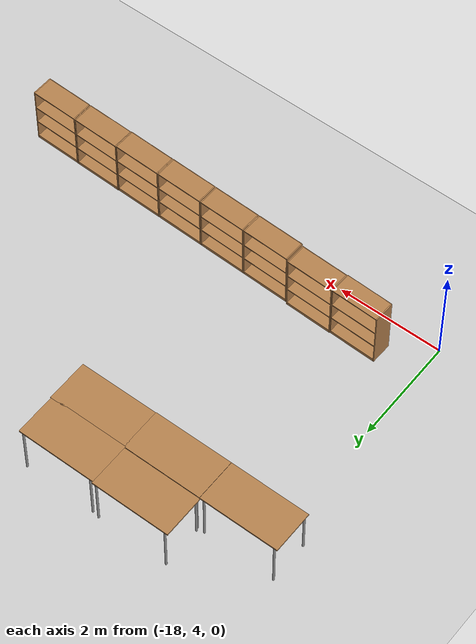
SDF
<sdf version="1.7">
 <world name="default">
  <model name="ground_plane">
   <static>1</static>
   <link name="link">
    <collision name="collision">
     <geometry><plane><normal>0 0 1</normal><size>100 100</size></plane></geometry>
     <surface>
      <contact><collide_bitmask>65535</collide_bitmask></contact>
      <friction><ode><mu>100</mu><mu2>50</mu2></ode></friction>
     </surface>
    </collision>
    <visual name="visual">
     <cast_shadows>0</cast_shadows>
     <geometry><plane><normal>0 0 1</normal><size>100 100</size></plane></geometry>
     <material>
      <script><uri>file://media/materials/scripts/gazebo.material</uri><name>Gazebo/Grey</name></script>
     </material>
    </visual>
   </link>
  </model>
  <model name="table_0_clone">
   <static>1</static>
   <link name="link">
    <collision name="surface">
     <pose>0 0 1 0 -0 0</pose>
     <geometry><box><size>1.5 0.8 0.03</size></box></geometry>
     <surface><friction><ode><mu>0.6</mu><mu2>0.6</mu2></ode></friction></surface>
    </collision>
    <visual name="visual1">
     <pose>0 0 1 0 -0 0</pose>
     <geometry><box><size>1.5 0.8 0.03</size></box></geometry>
     <material>
      <script><uri>file://media/materials/scripts/gazebo.material</uri><name>Gazebo/Wood</name></script>
     </material>
    </visual>
    <collision name="front_left_leg">
     <pose>0.68 0.38 0.5 0 -0 0</pose>
     <geometry><cylinder><radius>0.02</radius><length>1</length></cylinder></geometry>
    </collision>
    <visual name="front_left_leg">
     <pose>0.68 0.38 0.5 0 -0 0</pose>
     <geometry><cylinder><radius>0.02</radius><length>1</length></cylinder></geometry>
     <material>
      <script><uri>file://media/materials/scripts/gazebo.material</uri><name>Gazebo/Grey</name></script>
     </material>
    </visual>
    <collision name="front_right_leg">
     <pose>0.68 -0.38 0.5 0 -0 0</pose>
     <geometry><cylinder><radius>0.02</radius><length>1</length></cylinder></geometry>
    </collision>
    <visual name="front_right_leg">
     <pose>0.68 -0.38 0.5 0 -0 0</pose>
     <geometry><cylinder><radius>0.02</radius><length>1</length></cylinder></geometry>
     <material>
      <script><uri>file://media/materials/scripts/gazebo.material</uri><name>Gazebo/Grey</name></script>
     </material>
    </visual>
    <collision name="back_right_leg">
     <pose>-0.68 -0.38 0.5 0 -0 0</pose>
     <geometry><cylinder><radius>0.02</radius><length>1</length></cylinder></geometry>
    </collision>
    <visual name="back_right_leg">
     <pose>-0.68 -0.38 0.5 0 -0 0</pose>
     <geometry><cylinder><radius>0.02</radius><length>1</length></cylinder></geometry>
     <material>
      <script><uri>file://media/materials/scripts/gazebo.material</uri><name>Gazebo/Grey</name></script>
     </material>
    </visual>
    <collision name="back_left_leg">
     <pose>-0.68 0.38 0.5 0 -0 0</pose>
     <geometry><cylinder><radius>0.02</radius><length>1</length></cylinder></geometry>
    </collision>
    <visual name="back_left_leg">
     <pose>-0.68 0.38 0.5 0 -0 0</pose>
     <geometry><cylinder><radius>0.02</radius><length>1</length></cylinder></geometry>
     <material>
      <script><uri>file://media/materials/scripts/gazebo.material</uri><name>Gazebo/Grey</name></script>
     </material>
    </visual>
   </link>
   <pose>-16.2542 8.67444 0 0 -0 0</pose>
  </model>
  <model name="table_0_clone_0">
   <static>1</static>
   <link name="link">
    <collision name="surface">
     <pose>0 0 1 0 -0 0</pose>
     <geometry><box><size>1.5 0.8 0.03</size></box></geometry>
     <surface><friction><ode><mu>0.6</mu><mu2>0.6</mu2></ode></friction></surface>
    </collision>
    <visual name="visual1">
     <pose>0 0 1 0 -0 0</pose>
     <geometry><box><size>1.5 0.8 0.03</size></box></geometry>
     <material>
      <script><uri>file://media/materials/scripts/gazebo.material</uri><name>Gazebo/Wood</name></script>
     </material>
    </visual>
    <collision name="front_left_leg">
     <pose>0.68 0.38 0.5 0 -0 0</pose>
     <geometry><cylinder><radius>0.02</radius><length>1</length></cylinder></geometry>
    </collision>
    <visual name="front_left_leg">
     <pose>0.68 0.38 0.5 0 -0 0</pose>
     <geometry><cylinder><radius>0.02</radius><length>1</length></cylinder></geometry>
     <material>
      <script><uri>file://media/materials/scripts/gazebo.material</uri><name>Gazebo/Grey</name></script>
     </material>
    </visual>
    <collision name="front_right_leg">
     <pose>0.68 -0.38 0.5 0 -0 0</pose>
     <geometry><cylinder><radius>0.02</radius><length>1</length></cylinder></geometry>
    </collision>
    <visual name="front_right_leg">
     <pose>0.68 -0.38 0.5 0 -0 0</pose>
     <geometry><cylinder><radius>0.02</radius><length>1</length></cylinder></geometry>
     <material>
      <script><uri>file://media/materials/scripts/gazebo.material</uri><name>Gazebo/Grey</name></script>
     </material>
    </visual>
    <collision name="back_right_leg">
     <pose>-0.68 -0.38 0.5 0 -0 0</pose>
     <geometry><cylinder><radius>0.02</radius><length>1</length></cylinder></geometry>
    </collision>
    <visual name="back_right_leg">
     <pose>-0.68 -0.38 0.5 0 -0 0</pose>
     <geometry><cylinder><radius>0.02</radius><length>1</length></cylinder></geometry>
     <material>
      <script><uri>file://media/materials/scripts/gazebo.material</uri><name>Gazebo/Grey</name></script>
     </material>
    </visual>
    <collision name="back_left_leg">
     <pose>-0.68 0.38 0.5 0 -0 0</pose>
     <geometry><cylinder><radius>0.02</radius><length>1</length></cylinder></geometry>
    </collision>
    <visual name="back_left_leg">
     <pose>-0.68 0.38 0.5 0 -0 0</pose>
     <geometry><cylinder><radius>0.02</radius><length>1</length></cylinder></geometry>
     <material>
      <script><uri>file://media/materials/scripts/gazebo.material</uri><name>Gazebo/Grey</name></script>
     </material>
    </visual>
   </link>
   <pose>-17.7586 8.67438 0 0 -0 0</pose>
  </model>
  <model name="table_0_clone_1">
   <static>1</static>
   <link name="link">
    <collision name="surface">
     <pose>0 0 1 0 -0 0</pose>
     <geometry><box><size>1.5 0.8 0.03</size></box></geometry>
     <surface><friction><ode><mu>0.6</mu><mu2>0.6</mu2></ode></friction></surface>
    </collision>
    <visual name="visual1">
     <pose>0 0 1 0 -0 0</pose>
     <geometry><box><size>1.5 0.8 0.03</size></box></geometry>
     <material>
      <script><uri>file://media/materials/scripts/gazebo.material</uri><name>Gazebo/Wood</name></script>
     </material>
    </visual>
    <collision name="front_left_leg">
     <pose>0.68 0.38 0.5 0 -0 0</pose>
     <geometry><cylinder><radius>0.02</radius><length>1</length></cylinder></geometry>
    </collision>
    <visual name="front_left_leg">
     <pose>0.68 0.38 0.5 0 -0 0</pose>
     <geometry><cylinder><radius>0.02</radius><length>1</length></cylinder></geometry>
     <material>
      <script><uri>file://media/materials/scripts/gazebo.material</uri><name>Gazebo/Grey</name></script>
     </material>
    </visual>
    <collision name="front_right_leg">
     <pose>0.68 -0.38 0.5 0 -0 0</pose>
     <geometry><cylinder><radius>0.02</radius><length>1</length></cylinder></geometry>
    </collision>
    <visual name="front_right_leg">
     <pose>0.68 -0.38 0.5 0 -0 0</pose>
     <geometry><cylinder><radius>0.02</radius><length>1</length></cylinder></geometry>
     <material>
      <script><uri>file://media/materials/scripts/gazebo.material</uri><name>Gazebo/Grey</name></script>
     </material>
    </visual>
    <collision name="back_right_leg">
     <pose>-0.68 -0.38 0.5 0 -0 0</pose>
     <geometry><cylinder><radius>0.02</radius><length>1</length></cylinder></geometry>
    </collision>
    <visual name="back_right_leg">
     <pose>-0.68 -0.38 0.5 0 -0 0</pose>
     <geometry><cylinder><radius>0.02</radius><length>1</length></cylinder></geometry>
     <material>
      <script><uri>file://media/materials/scripts/gazebo.material</uri><name>Gazebo/Grey</name></script>
     </material>
    </visual>
    <collision name="back_left_leg">
     <pose>-0.68 0.38 0.5 0 -0 0</pose>
     <geometry><cylinder><radius>0.02</radius><length>1</length></cylinder></geometry>
    </collision>
    <visual name="back_left_leg">
     <pose>-0.68 0.38 0.5 0 -0 0</pose>
     <geometry><cylinder><radius>0.02</radius><length>1</length></cylinder></geometry>
     <material>
      <script><uri>file://media/materials/scripts/gazebo.material</uri><name>Gazebo/Grey</name></script>
     </material>
    </visual>
   </link>
   <pose>-16.277 9.48331 0 0 -0 0</pose>
  </model>
  <model name="table_0_clone_2">
   <static>1</static>
   <link name="link">
    <collision name="surface">
     <pose>0 0 1 0 -0 0</pose>
     <geometry><box><size>1.5 0.8 0.03</size></box></geometry>
     <surface><friction><ode><mu>0.6</mu><mu2>0.6</mu2></ode></friction></surface>
    </collision>
    <visual name="visual1">
     <pose>0 0 1 0 -0 0</pose>
     <geometry><box><size>1.5 0.8 0.03</size></box></geometry>
     <material>
      <script><uri>file://media/materials/scripts/gazebo.material</uri><name>Gazebo/Wood</name></script>
     </material>
    </visual>
    <collision name="front_left_leg">
     <pose>0.68 0.38 0.5 0 -0 0</pose>
     <geometry><cylinder><radius>0.02</radius><length>1</length></cylinder></geometry>
    </collision>
    <visual name="front_left_leg">
     <pose>0.68 0.38 0.5 0 -0 0</pose>
     <geometry><cylinder><radius>0.02</radius><length>1</length></cylinder></geometry>
     <material>
      <script><uri>file://media/materials/scripts/gazebo.material</uri><name>Gazebo/Grey</name></script>
     </material>
    </visual>
    <collision name="front_right_leg">
     <pose>0.68 -0.38 0.5 0 -0 0</pose>
     <geometry><cylinder><radius>0.02</radius><length>1</length></cylinder></geometry>
    </collision>
    <visual name="front_right_leg">
     <pose>0.68 -0.38 0.5 0 -0 0</pose>
     <geometry><cylinder><radius>0.02</radius><length>1</length></cylinder></geometry>
     <material>
      <script><uri>file://media/materials/scripts/gazebo.material</uri><name>Gazebo/Grey</name></script>
     </material>
    </visual>
    <collision name="back_right_leg">
     <pose>-0.68 -0.38 0.5 0 -0 0</pose>
     <geometry><cylinder><radius>0.02</radius><length>1</length></cylinder></geometry>
    </collision>
    <visual name="back_right_leg">
     <pose>-0.68 -0.38 0.5 0 -0 0</pose>
     <geometry><cylinder><radius>0.02</radius><length>1</length></cylinder></geometry>
     <material>
      <script><uri>file://media/materials/scripts/gazebo.material</uri><name>Gazebo/Grey</name></script>
     </material>
    </visual>
    <collision name="back_left_leg">
     <pose>-0.68 0.38 0.5 0 -0 0</pose>
     <geometry><cylinder><radius>0.02</radius><length>1</length></cylinder></geometry>
    </collision>
    <visual name="back_left_leg">
     <pose>-0.68 0.38 0.5 0 -0 0</pose>
     <geometry><cylinder><radius>0.02</radius><length>1</length></cylinder></geometry>
     <material>
      <script><uri>file://media/materials/scripts/gazebo.material</uri><name>Gazebo/Grey</name></script>
     </material>
    </visual>
   </link>
   <pose>-14.7794 9.45664 0 0 -0 0</pose>
  </model>
  <model name="table_0_clone_3">
   <static>1</static>
   <link name="link">
    <collision name="surface">
     <pose>0 0 1 0 -0 0</pose>
     <geometry><box><size>1.5 0.8 0.03</size></box></geometry>
     <surface><friction><ode><mu>0.6</mu><mu2>0.6</mu2></ode></friction></surface>
    </collision>
    <visual name="visual1">
     <pose>0 0 1 0 -0 0</pose>
     <geometry><box><size>1.5 0.8 0.03</size></box></geometry>
     <material>
      <script><uri>file://media/materials/scripts/gazebo.material</uri><name>Gazebo/Wood</name></script>
     </material>
    </visual>
    <collision name="front_left_leg">
     <pose>0.68 0.38 0.5 0 -0 0</pose>
     <geometry><cylinder><radius>0.02</radius><length>1</length></cylinder></geometry>
    </collision>
    <visual name="front_left_leg">
     <pose>0.68 0.38 0.5 0 -0 0</pose>
     <geometry><cylinder><radius>0.02</radius><length>1</length></cylinder></geometry>
     <material>
      <script><uri>file://media/materials/scripts/gazebo.material</uri><name>Gazebo/Grey</name></script>
     </material>
    </visual>
    <collision name="front_right_leg">
     <pose>0.68 -0.38 0.5 0 -0 0</pose>
     <geometry><cylinder><radius>0.02</radius><length>1</length></cylinder></geometry>
    </collision>
    <visual name="front_right_leg">
     <pose>0.68 -0.38 0.5 0 -0 0</pose>
     <geometry><cylinder><radius>0.02</radius><length>1</length></cylinder></geometry>
     <material>
      <script><uri>file://media/materials/scripts/gazebo.material</uri><name>Gazebo/Grey</name></script>
     </material>
    </visual>
    <collision name="back_right_leg">
     <pose>-0.68 -0.38 0.5 0 -0 0</pose>
     <geometry><cylinder><radius>0.02</radius><length>1</length></cylinder></geometry>
    </collision>
    <visual name="back_right_leg">
     <pose>-0.68 -0.38 0.5 0 -0 0</pose>
     <geometry><cylinder><radius>0.02</radius><length>1</length></cylinder></geometry>
     <material>
      <script><uri>file://media/materials/scripts/gazebo.material</uri><name>Gazebo/Grey</name></script>
     </material>
    </visual>
    <collision name="back_left_leg">
     <pose>-0.68 0.38 0.5 0 -0 0</pose>
     <geometry><cylinder><radius>0.02</radius><length>1</length></cylinder></geometry>
    </collision>
    <visual name="back_left_leg">
     <pose>-0.68 0.38 0.5 0 -0 0</pose>
     <geometry><cylinder><radius>0.02</radius><length>1</length></cylinder></geometry>
     <material>
      <script><uri>file://media/materials/scripts/gazebo.material</uri><name>Gazebo/Grey</name></script>
     </material>
    </visual>
   </link>
   <pose>-14.7658 8.68214 0 0 -0 0</pose>
  </model>
  <model name="bookshelf_clone">
   <static>1</static>
   <link name="link">
    <inertial><mass>1</mass></inertial>
    <collision name="back">
     <pose>0 0.005 0.6 0 -0 0</pose>
     <geometry><box><size>0.9 0.01 1.2</size></box></geometry>
    </collision>
    <visual name="visual1">
     <pose>0 0.005 0.6 0 -0 0</pose>
     <geometry><box><size>0.9 0.01 1.2</size></box></geometry>
     <material>
      <script><uri>file://media/materials/scripts/gazebo.material</uri><name>Gazebo/Wood</name></script>
     </material>
    </visual>
    <collision name="left_side">
     <pose>0.45 -0.195 0.6 0 -0 0</pose>
     <geometry><box><size>0.02 0.4 1.2</size></box></geometry>
    </collision>
    <visual name="visual2">
     <pose>0.45 -0.195 0.6 0 -0 0</pose>
     <geometry><box><size>0.02 0.4 1.2</size></box></geometry>
     <material>
      <script><uri>file://media/materials/scripts/gazebo.material</uri><name>Gazebo/Wood</name></script>
     </material>
    </visual>
    <collision name="right_side">
     <pose>-0.45 -0.195 0.6 0 -0 0</pose>
     <geometry><box><size>0.02 0.4 1.2</size></box></geometry>
    </collision>
    <visual name="visual3">
     <pose>-0.45 -0.195 0.6 0 -0 0</pose>
     <geometry><box><size>0.02 0.4 1.2</size></box></geometry>
     <material>
      <script><uri>file://media/materials/scripts/gazebo.material</uri><name>Gazebo/Wood</name></script>
     </material>
    </visual>
    <collision name="bottom">
     <pose>0 -0.195 0.03 0 -0 0</pose>
     <geometry><box><size>0.88 0.4 0.06</size></box></geometry>
    </collision>
    <visual name="visual4">
     <pose>0 -0.195 0.03 0 -0 0</pose>
     <geometry><box><size>0.88 0.4 0.06</size></box></geometry>
     <material>
      <script><uri>file://media/materials/scripts/gazebo.material</uri><name>Gazebo/Wood</name></script>
     </material>
    </visual>
    <collision name="top">
     <pose>0 -0.195 1.19 0 -0 0</pose>
     <geometry><box><size>0.88 0.4 0.02</size></box></geometry>
    </collision>
    <visual name="visual5">
     <pose>0 -0.195 1.19 0 -0 0</pose>
     <geometry><box><size>0.88 0.4 0.02</size></box></geometry>
     <material>
      <script><uri>file://media/materials/scripts/gazebo.material</uri><name>Gazebo/Wood</name></script>
     </material>
    </visual>
    <collision name="low_shelf">
     <pose>0 -0.195 0.43 0 -0 0</pose>
     <geometry><box><size>0.88 0.4 0.02</size></box></geometry>
    </collision>
    <visual name="visual6">
     <pose>0 -0.195 0.43 0 -0 0</pose>
     <geometry><box><size>0.88 0.4 0.02</size></box></geometry>
     <material>
      <script><uri>file://media/materials/scripts/gazebo.material</uri><name>Gazebo/Wood</name></script>
     </material>
    </visual>
    <collision name="high_shelf">
     <pose>0 -0.195 0.8 0 -0 0</pose>
     <geometry><box><size>0.88 0.4 0.02</size></box></geometry>
    </collision>
    <visual name="visual7">
     <pose>0 -0.195 0.8 0 -0 0</pose>
     <geometry><box><size>0.88 0.4 0.02</size></box></geometry>
     <material>
      <script><uri>file://media/materials/scripts/gazebo.material</uri><name>Gazebo/Wood</name></script>
     </material>
    </visual>
   </link>
   <pose>-16.8243 4.42696 0 0 -0 3.11376</pose>
  </model>
  <model name="bookshelf_clone_0">
   <static>1</static>
   <link name="link">
    <inertial><mass>1</mass></inertial>
    <collision name="back">
     <pose>0 0.005 0.6 0 -0 0</pose>
     <geometry><box><size>0.9 0.01 1.2</size></box></geometry>
    </collision>
    <visual name="visual1">
     <pose>0 0.005 0.6 0 -0 0</pose>
     <geometry><box><size>0.9 0.01 1.2</size></box></geometry>
     <material>
      <script><uri>file://media/materials/scripts/gazebo.material</uri><name>Gazebo/Wood</name></script>
     </material>
    </visual>
    <collision name="left_side">
     <pose>0.45 -0.195 0.6 0 -0 0</pose>
     <geometry><box><size>0.02 0.4 1.2</size></box></geometry>
    </collision>
    <visual name="visual2">
     <pose>0.45 -0.195 0.6 0 -0 0</pose>
     <geometry><box><size>0.02 0.4 1.2</size></box></geometry>
     <material>
      <script><uri>file://media/materials/scripts/gazebo.material</uri><name>Gazebo/Wood</name></script>
     </material>
    </visual>
    <collision name="right_side">
     <pose>-0.45 -0.195 0.6 0 -0 0</pose>
     <geometry><box><size>0.02 0.4 1.2</size></box></geometry>
    </collision>
    <visual name="visual3">
     <pose>-0.45 -0.195 0.6 0 -0 0</pose>
     <geometry><box><size>0.02 0.4 1.2</size></box></geometry>
     <material>
      <script><uri>file://media/materials/scripts/gazebo.material</uri><name>Gazebo/Wood</name></script>
     </material>
    </visual>
    <collision name="bottom">
     <pose>0 -0.195 0.03 0 -0 0</pose>
     <geometry><box><size>0.88 0.4 0.06</size></box></geometry>
    </collision>
    <visual name="visual4">
     <pose>0 -0.195 0.03 0 -0 0</pose>
     <geometry><box><size>0.88 0.4 0.06</size></box></geometry>
     <material>
      <script><uri>file://media/materials/scripts/gazebo.material</uri><name>Gazebo/Wood</name></script>
     </material>
    </visual>
    <collision name="top">
     <pose>0 -0.195 1.19 0 -0 0</pose>
     <geometry><box><size>0.88 0.4 0.02</size></box></geometry>
    </collision>
    <visual name="visual5">
     <pose>0 -0.195 1.19 0 -0 0</pose>
     <geometry><box><size>0.88 0.4 0.02</size></box></geometry>
     <material>
      <script><uri>file://media/materials/scripts/gazebo.material</uri><name>Gazebo/Wood</name></script>
     </material>
    </visual>
    <collision name="low_shelf">
     <pose>0 -0.195 0.43 0 -0 0</pose>
     <geometry><box><size>0.88 0.4 0.02</size></box></geometry>
    </collision>
    <visual name="visual6">
     <pose>0 -0.195 0.43 0 -0 0</pose>
     <geometry><box><size>0.88 0.4 0.02</size></box></geometry>
     <material>
      <script><uri>file://media/materials/scripts/gazebo.material</uri><name>Gazebo/Wood</name></script>
     </material>
    </visual>
    <collision name="high_shelf">
     <pose>0 -0.195 0.8 0 -0 0</pose>
     <geometry><box><size>0.88 0.4 0.02</size></box></geometry>
    </collision>
    <visual name="visual7">
     <pose>0 -0.195 0.8 0 -0 0</pose>
     <geometry><box><size>0.88 0.4 0.02</size></box></geometry>
     <material>
      <script><uri>file://media/materials/scripts/gazebo.material</uri><name>Gazebo/Wood</name></script>
     </material>
    </visual>
   </link>
   <pose>-15.911 4.41182 0 0 -0 3.11376</pose>
  </model>
  <model name="bookshelf_clone_1">
   <static>1</static>
   <link name="link">
    <inertial><mass>1</mass></inertial>
    <collision name="back">
     <pose>0 0.005 0.6 0 -0 0</pose>
     <geometry><box><size>0.9 0.01 1.2</size></box></geometry>
    </collision>
    <visual name="visual1">
     <pose>0 0.005 0.6 0 -0 0</pose>
     <geometry><box><size>0.9 0.01 1.2</size></box></geometry>
     <material>
      <script><uri>file://media/materials/scripts/gazebo.material</uri><name>Gazebo/Wood</name></script>
     </material>
    </visual>
    <collision name="left_side">
     <pose>0.45 -0.195 0.6 0 -0 0</pose>
     <geometry><box><size>0.02 0.4 1.2</size></box></geometry>
    </collision>
    <visual name="visual2">
     <pose>0.45 -0.195 0.6 0 -0 0</pose>
     <geometry><box><size>0.02 0.4 1.2</size></box></geometry>
     <material>
      <script><uri>file://media/materials/scripts/gazebo.material</uri><name>Gazebo/Wood</name></script>
     </material>
    </visual>
    <collision name="right_side">
     <pose>-0.45 -0.195 0.6 0 -0 0</pose>
     <geometry><box><size>0.02 0.4 1.2</size></box></geometry>
    </collision>
    <visual name="visual3">
     <pose>-0.45 -0.195 0.6 0 -0 0</pose>
     <geometry><box><size>0.02 0.4 1.2</size></box></geometry>
     <material>
      <script><uri>file://media/materials/scripts/gazebo.material</uri><name>Gazebo/Wood</name></script>
     </material>
    </visual>
    <collision name="bottom">
     <pose>0 -0.195 0.03 0 -0 0</pose>
     <geometry><box><size>0.88 0.4 0.06</size></box></geometry>
    </collision>
    <visual name="visual4">
     <pose>0 -0.195 0.03 0 -0 0</pose>
     <geometry><box><size>0.88 0.4 0.06</size></box></geometry>
     <material>
      <script><uri>file://media/materials/scripts/gazebo.material</uri><name>Gazebo/Wood</name></script>
     </material>
    </visual>
    <collision name="top">
     <pose>0 -0.195 1.19 0 -0 0</pose>
     <geometry><box><size>0.88 0.4 0.02</size></box></geometry>
    </collision>
    <visual name="visual5">
     <pose>0 -0.195 1.19 0 -0 0</pose>
     <geometry><box><size>0.88 0.4 0.02</size></box></geometry>
     <material>
      <script><uri>file://media/materials/scripts/gazebo.material</uri><name>Gazebo/Wood</name></script>
     </material>
    </visual>
    <collision name="low_shelf">
     <pose>0 -0.195 0.43 0 -0 0</pose>
     <geometry><box><size>0.88 0.4 0.02</size></box></geometry>
    </collision>
    <visual name="visual6">
     <pose>0 -0.195 0.43 0 -0 0</pose>
     <geometry><box><size>0.88 0.4 0.02</size></box></geometry>
     <material>
      <script><uri>file://media/materials/scripts/gazebo.material</uri><name>Gazebo/Wood</name></script>
     </material>
    </visual>
    <collision name="high_shelf">
     <pose>0 -0.195 0.8 0 -0 0</pose>
     <geometry><box><size>0.88 0.4 0.02</size></box></geometry>
    </collision>
    <visual name="visual7">
     <pose>0 -0.195 0.8 0 -0 0</pose>
     <geometry><box><size>0.88 0.4 0.02</size></box></geometry>
     <material>
      <script><uri>file://media/materials/scripts/gazebo.material</uri><name>Gazebo/Wood</name></script>
     </material>
    </visual>
   </link>
   <pose>-14.9646 4.35644 0 0 -0 3.11376</pose>
  </model>
  <model name="bookshelf_clone_2">
   <static>1</static>
   <link name="link">
    <inertial><mass>1</mass></inertial>
    <collision name="back">
     <pose>0 0.005 0.6 0 -0 0</pose>
     <geometry><box><size>0.9 0.01 1.2</size></box></geometry>
    </collision>
    <visual name="visual1">
     <pose>0 0.005 0.6 0 -0 0</pose>
     <geometry><box><size>0.9 0.01 1.2</size></box></geometry>
     <material>
      <script><uri>file://media/materials/scripts/gazebo.material</uri><name>Gazebo/Wood</name></script>
     </material>
    </visual>
    <collision name="left_side">
     <pose>0.45 -0.195 0.6 0 -0 0</pose>
     <geometry><box><size>0.02 0.4 1.2</size></box></geometry>
    </collision>
    <visual name="visual2">
     <pose>0.45 -0.195 0.6 0 -0 0</pose>
     <geometry><box><size>0.02 0.4 1.2</size></box></geometry>
     <material>
      <script><uri>file://media/materials/scripts/gazebo.material</uri><name>Gazebo/Wood</name></script>
     </material>
    </visual>
    <collision name="right_side">
     <pose>-0.45 -0.195 0.6 0 -0 0</pose>
     <geometry><box><size>0.02 0.4 1.2</size></box></geometry>
    </collision>
    <visual name="visual3">
     <pose>-0.45 -0.195 0.6 0 -0 0</pose>
     <geometry><box><size>0.02 0.4 1.2</size></box></geometry>
     <material>
      <script><uri>file://media/materials/scripts/gazebo.material</uri><name>Gazebo/Wood</name></script>
     </material>
    </visual>
    <collision name="bottom">
     <pose>0 -0.195 0.03 0 -0 0</pose>
     <geometry><box><size>0.88 0.4 0.06</size></box></geometry>
    </collision>
    <visual name="visual4">
     <pose>0 -0.195 0.03 0 -0 0</pose>
     <geometry><box><size>0.88 0.4 0.06</size></box></geometry>
     <material>
      <script><uri>file://media/materials/scripts/gazebo.material</uri><name>Gazebo/Wood</name></script>
     </material>
    </visual>
    <collision name="top">
     <pose>0 -0.195 1.19 0 -0 0</pose>
     <geometry><box><size>0.88 0.4 0.02</size></box></geometry>
    </collision>
    <visual name="visual5">
     <pose>0 -0.195 1.19 0 -0 0</pose>
     <geometry><box><size>0.88 0.4 0.02</size></box></geometry>
     <material>
      <script><uri>file://media/materials/scripts/gazebo.material</uri><name>Gazebo/Wood</name></script>
     </material>
    </visual>
    <collision name="low_shelf">
     <pose>0 -0.195 0.43 0 -0 0</pose>
     <geometry><box><size>0.88 0.4 0.02</size></box></geometry>
    </collision>
    <visual name="visual6">
     <pose>0 -0.195 0.43 0 -0 0</pose>
     <geometry><box><size>0.88 0.4 0.02</size></box></geometry>
     <material>
      <script><uri>file://media/materials/scripts/gazebo.material</uri><name>Gazebo/Wood</name></script>
     </material>
    </visual>
    <collision name="high_shelf">
     <pose>0 -0.195 0.8 0 -0 0</pose>
     <geometry><box><size>0.88 0.4 0.02</size></box></geometry>
    </collision>
    <visual name="visual7">
     <pose>0 -0.195 0.8 0 -0 0</pose>
     <geometry><box><size>0.88 0.4 0.02</size></box></geometry>
     <material>
      <script><uri>file://media/materials/scripts/gazebo.material</uri><name>Gazebo/Wood</name></script>
     </material>
    </visual>
   </link>
   <pose>-14.0411 4.33127 0 0 -0 3.11376</pose>
  </model>
  <model name="bookshelf_clone_3">
   <static>1</static>
   <link name="link">
    <inertial><mass>1</mass></inertial>
    <collision name="back">
     <pose>0 0.005 0.6 0 -0 0</pose>
     <geometry><box><size>0.9 0.01 1.2</size></box></geometry>
    </collision>
    <visual name="visual1">
     <pose>0 0.005 0.6 0 -0 0</pose>
     <geometry><box><size>0.9 0.01 1.2</size></box></geometry>
     <material>
      <script><uri>file://media/materials/scripts/gazebo.material</uri><name>Gazebo/Wood</name></script>
     </material>
    </visual>
    <collision name="left_side">
     <pose>0.45 -0.195 0.6 0 -0 0</pose>
     <geometry><box><size>0.02 0.4 1.2</size></box></geometry>
    </collision>
    <visual name="visual2">
     <pose>0.45 -0.195 0.6 0 -0 0</pose>
     <geometry><box><size>0.02 0.4 1.2</size></box></geometry>
     <material>
      <script><uri>file://media/materials/scripts/gazebo.material</uri><name>Gazebo/Wood</name></script>
     </material>
    </visual>
    <collision name="right_side">
     <pose>-0.45 -0.195 0.6 0 -0 0</pose>
     <geometry><box><size>0.02 0.4 1.2</size></box></geometry>
    </collision>
    <visual name="visual3">
     <pose>-0.45 -0.195 0.6 0 -0 0</pose>
     <geometry><box><size>0.02 0.4 1.2</size></box></geometry>
     <material>
      <script><uri>file://media/materials/scripts/gazebo.material</uri><name>Gazebo/Wood</name></script>
     </material>
    </visual>
    <collision name="bottom">
     <pose>0 -0.195 0.03 0 -0 0</pose>
     <geometry><box><size>0.88 0.4 0.06</size></box></geometry>
    </collision>
    <visual name="visual4">
     <pose>0 -0.195 0.03 0 -0 0</pose>
     <geometry><box><size>0.88 0.4 0.06</size></box></geometry>
     <material>
      <script><uri>file://media/materials/scripts/gazebo.material</uri><name>Gazebo/Wood</name></script>
     </material>
    </visual>
    <collision name="top">
     <pose>0 -0.195 1.19 0 -0 0</pose>
     <geometry><box><size>0.88 0.4 0.02</size></box></geometry>
    </collision>
    <visual name="visual5">
     <pose>0 -0.195 1.19 0 -0 0</pose>
     <geometry><box><size>0.88 0.4 0.02</size></box></geometry>
     <material>
      <script><uri>file://media/materials/scripts/gazebo.material</uri><name>Gazebo/Wood</name></script>
     </material>
    </visual>
    <collision name="low_shelf">
     <pose>0 -0.195 0.43 0 -0 0</pose>
     <geometry><box><size>0.88 0.4 0.02</size></box></geometry>
    </collision>
    <visual name="visual6">
     <pose>0 -0.195 0.43 0 -0 0</pose>
     <geometry><box><size>0.88 0.4 0.02</size></box></geometry>
     <material>
      <script><uri>file://media/materials/scripts/gazebo.material</uri><name>Gazebo/Wood</name></script>
     </material>
    </visual>
    <collision name="high_shelf">
     <pose>0 -0.195 0.8 0 -0 0</pose>
     <geometry><box><size>0.88 0.4 0.02</size></box></geometry>
    </collision>
    <visual name="visual7">
     <pose>0 -0.195 0.8 0 -0 0</pose>
     <geometry><box><size>0.88 0.4 0.02</size></box></geometry>
     <material>
      <script><uri>file://media/materials/scripts/gazebo.material</uri><name>Gazebo/Wood</name></script>
     </material>
    </visual>
   </link>
   <pose>-13.1147 4.30538 0 0 -0 3.11376</pose>
  </model>
  <model name="bookshelf_clone_4">
   <static>1</static>
   <link name="link">
    <inertial><mass>1</mass></inertial>
    <collision name="back">
     <pose>0 0.005 0.6 0 -0 0</pose>
     <geometry><box><size>0.9 0.01 1.2</size></box></geometry>
    </collision>
    <visual name="visual1">
     <pose>0 0.005 0.6 0 -0 0</pose>
     <geometry><box><size>0.9 0.01 1.2</size></box></geometry>
     <material>
      <script><uri>file://media/materials/scripts/gazebo.material</uri><name>Gazebo/Wood</name></script>
     </material>
    </visual>
    <collision name="left_side">
     <pose>0.45 -0.195 0.6 0 -0 0</pose>
     <geometry><box><size>0.02 0.4 1.2</size></box></geometry>
    </collision>
    <visual name="visual2">
     <pose>0.45 -0.195 0.6 0 -0 0</pose>
     <geometry><box><size>0.02 0.4 1.2</size></box></geometry>
     <material>
      <script><uri>file://media/materials/scripts/gazebo.material</uri><name>Gazebo/Wood</name></script>
     </material>
    </visual>
    <collision name="right_side">
     <pose>-0.45 -0.195 0.6 0 -0 0</pose>
     <geometry><box><size>0.02 0.4 1.2</size></box></geometry>
    </collision>
    <visual name="visual3">
     <pose>-0.45 -0.195 0.6 0 -0 0</pose>
     <geometry><box><size>0.02 0.4 1.2</size></box></geometry>
     <material>
      <script><uri>file://media/materials/scripts/gazebo.material</uri><name>Gazebo/Wood</name></script>
     </material>
    </visual>
    <collision name="bottom">
     <pose>0 -0.195 0.03 0 -0 0</pose>
     <geometry><box><size>0.88 0.4 0.06</size></box></geometry>
    </collision>
    <visual name="visual4">
     <pose>0 -0.195 0.03 0 -0 0</pose>
     <geometry><box><size>0.88 0.4 0.06</size></box></geometry>
     <material>
      <script><uri>file://media/materials/scripts/gazebo.material</uri><name>Gazebo/Wood</name></script>
     </material>
    </visual>
    <collision name="top">
     <pose>0 -0.195 1.19 0 -0 0</pose>
     <geometry><box><size>0.88 0.4 0.02</size></box></geometry>
    </collision>
    <visual name="visual5">
     <pose>0 -0.195 1.19 0 -0 0</pose>
     <geometry><box><size>0.88 0.4 0.02</size></box></geometry>
     <material>
      <script><uri>file://media/materials/scripts/gazebo.material</uri><name>Gazebo/Wood</name></script>
     </material>
    </visual>
    <collision name="low_shelf">
     <pose>0 -0.195 0.43 0 -0 0</pose>
     <geometry><box><size>0.88 0.4 0.02</size></box></geometry>
    </collision>
    <visual name="visual6">
     <pose>0 -0.195 0.43 0 -0 0</pose>
     <geometry><box><size>0.88 0.4 0.02</size></box></geometry>
     <material>
      <script><uri>file://media/materials/scripts/gazebo.material</uri><name>Gazebo/Wood</name></script>
     </material>
    </visual>
    <collision name="high_shelf">
     <pose>0 -0.195 0.8 0 -0 0</pose>
     <geometry><box><size>0.88 0.4 0.02</size></box></geometry>
    </collision>
    <visual name="visual7">
     <pose>0 -0.195 0.8 0 -0 0</pose>
     <geometry><box><size>0.88 0.4 0.02</size></box></geometry>
     <material>
      <script><uri>file://media/materials/scripts/gazebo.material</uri><name>Gazebo/Wood</name></script>
     </material>
    </visual>
   </link>
   <pose>-12.1942 4.28239 0 0 -0 3.11376</pose>
  </model>
  <model name="bookshelf_clone_5">
   <static>1</static>
   <link name="link">
    <inertial><mass>1</mass></inertial>
    <collision name="back">
     <pose>0 0.005 0.6 0 -0 0</pose>
     <geometry><box><size>0.9 0.01 1.2</size></box></geometry>
    </collision>
    <visual name="visual1">
     <pose>0 0.005 0.6 0 -0 0</pose>
     <geometry><box><size>0.9 0.01 1.2</size></box></geometry>
     <material>
      <script><uri>file://media/materials/scripts/gazebo.material</uri><name>Gazebo/Wood</name></script>
     </material>
    </visual>
    <collision name="left_side">
     <pose>0.45 -0.195 0.6 0 -0 0</pose>
     <geometry><box><size>0.02 0.4 1.2</size></box></geometry>
    </collision>
    <visual name="visual2">
     <pose>0.45 -0.195 0.6 0 -0 0</pose>
     <geometry><box><size>0.02 0.4 1.2</size></box></geometry>
     <material>
      <script><uri>file://media/materials/scripts/gazebo.material</uri><name>Gazebo/Wood</name></script>
     </material>
    </visual>
    <collision name="right_side">
     <pose>-0.45 -0.195 0.6 0 -0 0</pose>
     <geometry><box><size>0.02 0.4 1.2</size></box></geometry>
    </collision>
    <visual name="visual3">
     <pose>-0.45 -0.195 0.6 0 -0 0</pose>
     <geometry><box><size>0.02 0.4 1.2</size></box></geometry>
     <material>
      <script><uri>file://media/materials/scripts/gazebo.material</uri><name>Gazebo/Wood</name></script>
     </material>
    </visual>
    <collision name="bottom">
     <pose>0 -0.195 0.03 0 -0 0</pose>
     <geometry><box><size>0.88 0.4 0.06</size></box></geometry>
    </collision>
    <visual name="visual4">
     <pose>0 -0.195 0.03 0 -0 0</pose>
     <geometry><box><size>0.88 0.4 0.06</size></box></geometry>
     <material>
      <script><uri>file://media/materials/scripts/gazebo.material</uri><name>Gazebo/Wood</name></script>
     </material>
    </visual>
    <collision name="top">
     <pose>0 -0.195 1.19 0 -0 0</pose>
     <geometry><box><size>0.88 0.4 0.02</size></box></geometry>
    </collision>
    <visual name="visual5">
     <pose>0 -0.195 1.19 0 -0 0</pose>
     <geometry><box><size>0.88 0.4 0.02</size></box></geometry>
     <material>
      <script><uri>file://media/materials/scripts/gazebo.material</uri><name>Gazebo/Wood</name></script>
     </material>
    </visual>
    <collision name="low_shelf">
     <pose>0 -0.195 0.43 0 -0 0</pose>
     <geometry><box><size>0.88 0.4 0.02</size></box></geometry>
    </collision>
    <visual name="visual6">
     <pose>0 -0.195 0.43 0 -0 0</pose>
     <geometry><box><size>0.88 0.4 0.02</size></box></geometry>
     <material>
      <script><uri>file://media/materials/scripts/gazebo.material</uri><name>Gazebo/Wood</name></script>
     </material>
    </visual>
    <collision name="high_shelf">
     <pose>0 -0.195 0.8 0 -0 0</pose>
     <geometry><box><size>0.88 0.4 0.02</size></box></geometry>
    </collision>
    <visual name="visual7">
     <pose>0 -0.195 0.8 0 -0 0</pose>
     <geometry><box><size>0.88 0.4 0.02</size></box></geometry>
     <material>
      <script><uri>file://media/materials/scripts/gazebo.material</uri><name>Gazebo/Wood</name></script>
     </material>
    </visual>
   </link>
   <pose>-11.2822 4.26528 0 0 -0 3.11376</pose>
  </model>
  <model name="bookshelf_clone_6">
   <static>1</static>
   <link name="link">
    <inertial><mass>1</mass></inertial>
    <collision name="back">
     <pose>0 0.005 0.6 0 -0 0</pose>
     <geometry><box><size>0.9 0.01 1.2</size></box></geometry>
    </collision>
    <visual name="visual1">
     <pose>0 0.005 0.6 0 -0 0</pose>
     <geometry><box><size>0.9 0.01 1.2</size></box></geometry>
     <material>
      <script><uri>file://media/materials/scripts/gazebo.material</uri><name>Gazebo/Wood</name></script>
     </material>
    </visual>
    <collision name="left_side">
     <pose>0.45 -0.195 0.6 0 -0 0</pose>
     <geometry><box><size>0.02 0.4 1.2</size></box></geometry>
    </collision>
    <visual name="visual2">
     <pose>0.45 -0.195 0.6 0 -0 0</pose>
     <geometry><box><size>0.02 0.4 1.2</size></box></geometry>
     <material>
      <script><uri>file://media/materials/scripts/gazebo.material</uri><name>Gazebo/Wood</name></script>
     </material>
    </visual>
    <collision name="right_side">
     <pose>-0.45 -0.195 0.6 0 -0 0</pose>
     <geometry><box><size>0.02 0.4 1.2</size></box></geometry>
    </collision>
    <visual name="visual3">
     <pose>-0.45 -0.195 0.6 0 -0 0</pose>
     <geometry><box><size>0.02 0.4 1.2</size></box></geometry>
     <material>
      <script><uri>file://media/materials/scripts/gazebo.material</uri><name>Gazebo/Wood</name></script>
     </material>
    </visual>
    <collision name="bottom">
     <pose>0 -0.195 0.03 0 -0 0</pose>
     <geometry><box><size>0.88 0.4 0.06</size></box></geometry>
    </collision>
    <visual name="visual4">
     <pose>0 -0.195 0.03 0 -0 0</pose>
     <geometry><box><size>0.88 0.4 0.06</size></box></geometry>
     <material>
      <script><uri>file://media/materials/scripts/gazebo.material</uri><name>Gazebo/Wood</name></script>
     </material>
    </visual>
    <collision name="top">
     <pose>0 -0.195 1.19 0 -0 0</pose>
     <geometry><box><size>0.88 0.4 0.02</size></box></geometry>
    </collision>
    <visual name="visual5">
     <pose>0 -0.195 1.19 0 -0 0</pose>
     <geometry><box><size>0.88 0.4 0.02</size></box></geometry>
     <material>
      <script><uri>file://media/materials/scripts/gazebo.material</uri><name>Gazebo/Wood</name></script>
     </material>
    </visual>
    <collision name="low_shelf">
     <pose>0 -0.195 0.43 0 -0 0</pose>
     <geometry><box><size>0.88 0.4 0.02</size></box></geometry>
    </collision>
    <visual name="visual6">
     <pose>0 -0.195 0.43 0 -0 0</pose>
     <geometry><box><size>0.88 0.4 0.02</size></box></geometry>
     <material>
      <script><uri>file://media/materials/scripts/gazebo.material</uri><name>Gazebo/Wood</name></script>
     </material>
    </visual>
    <collision name="high_shelf">
     <pose>0 -0.195 0.8 0 -0 0</pose>
     <geometry><box><size>0.88 0.4 0.02</size></box></geometry>
    </collision>
    <visual name="visual7">
     <pose>0 -0.195 0.8 0 -0 0</pose>
     <geometry><box><size>0.88 0.4 0.02</size></box></geometry>
     <material>
      <script><uri>file://media/materials/scripts/gazebo.material</uri><name>Gazebo/Wood</name></script>
     </material>
    </visual>
   </link>
   <pose>-10.3573 4.2387 0 0 -0 3.11376</pose>
  </model>
 </world>
</sdf>
